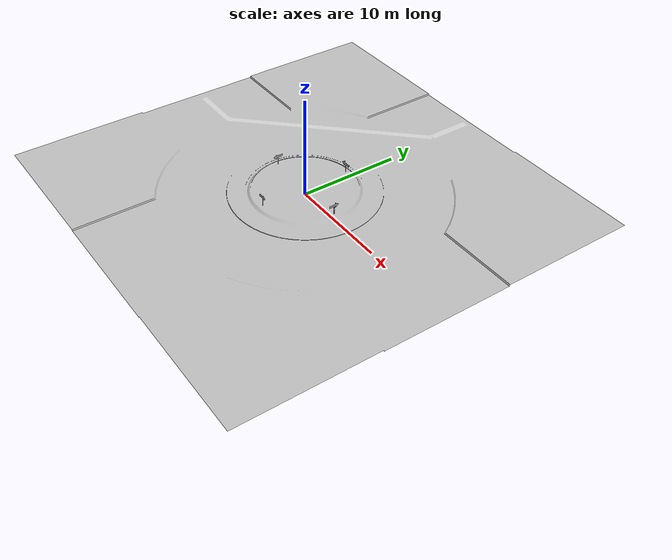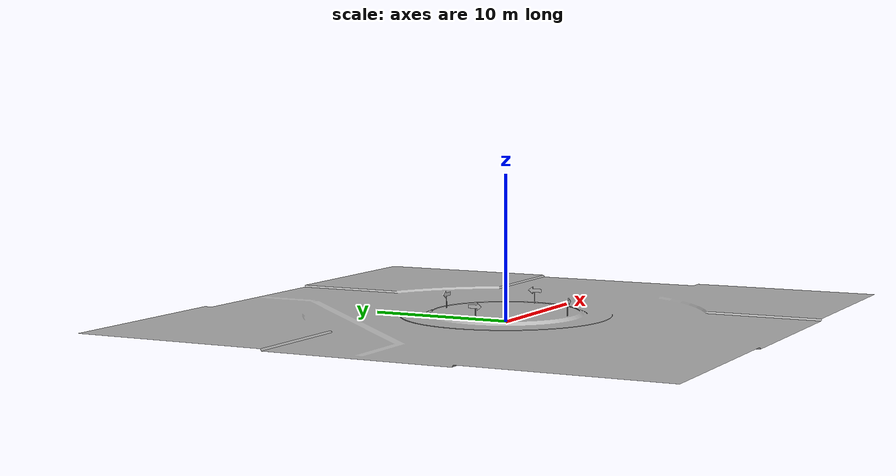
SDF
<?xml version="1.0" ?>
<sdf version="1.5">

 <model name="Kreisverkehr">
    <static>true</static>
	<link name="body">
	<inertial>
	 <pose>1 2 5  2 2 2</pose>
	 <mass>30.0</mass>
	  <inertia>
	   <ixx>0.5</ixx>
           <ixy>0.5</ixy>
           <ixz>0.5</ixz>
           <iyy>0.5</iyy>
           <iyz>0.5</iyz>
           <izz>0.5</izz>
          </inertia>
          </inertial>

        <collision name="visual">
	  <geometry>
            <mesh>
		<uri>model://Kreisverkehr/meshes/Kreisverkehr.dae</uri>
	    </mesh>
          </geometry>

        </collision>

        <visual name="visual">
	  <geometry>
            <mesh><uri>model://Kreisverkehr/meshes/Kreisverkehr.dae</uri></mesh>
          </geometry>
	</visual>
      </link>
    </model>
</sdf>
